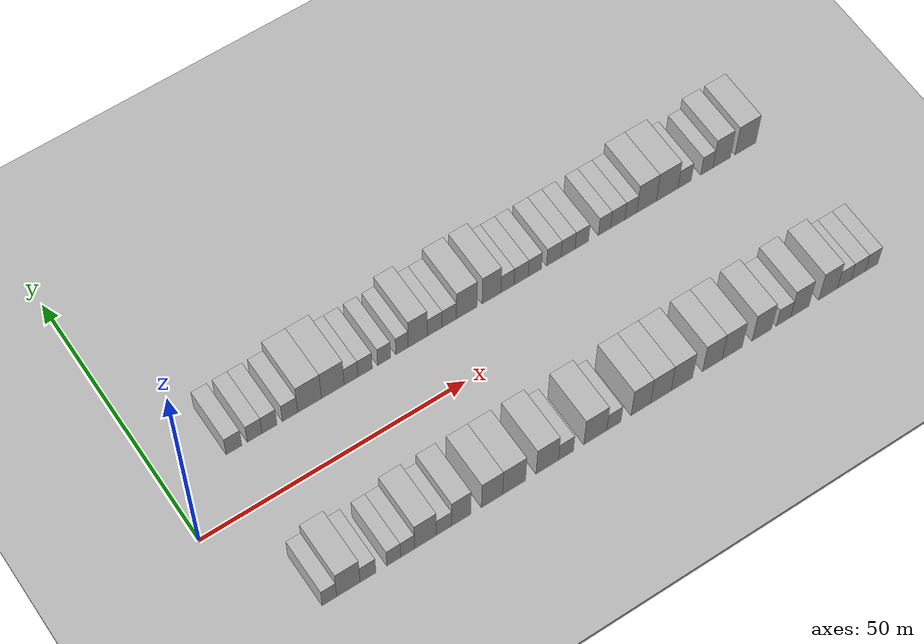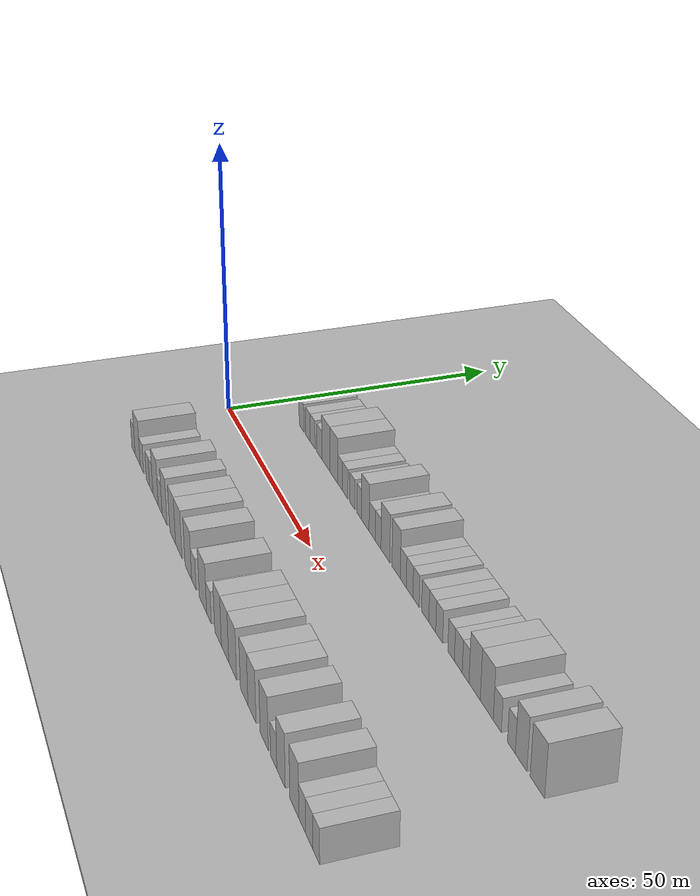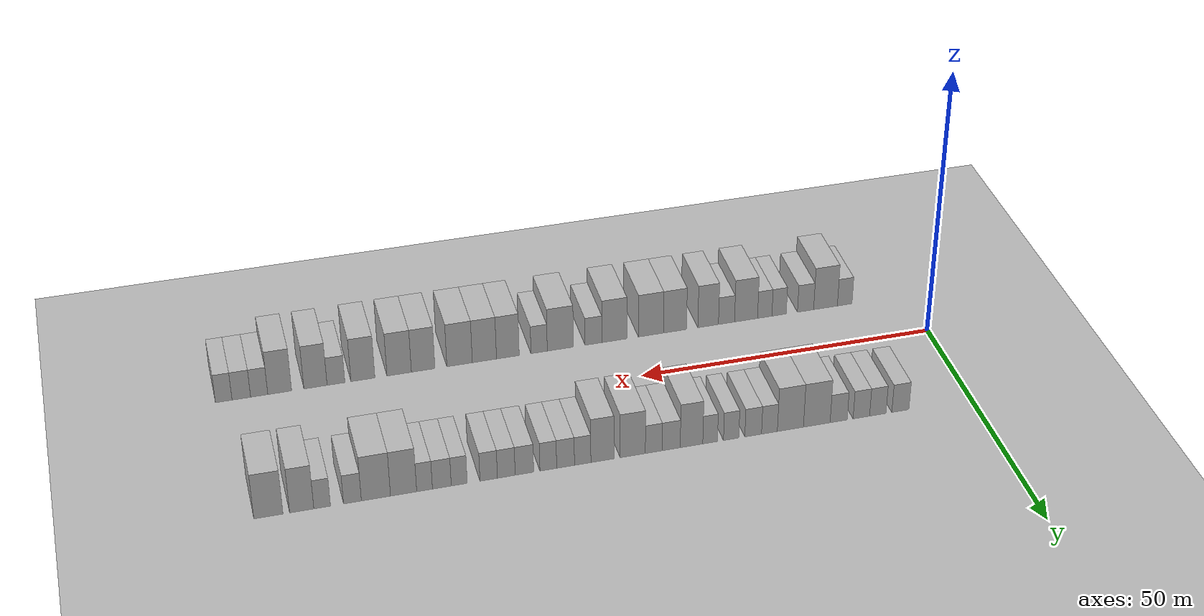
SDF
<sdf version="1.6">
 <world name="default">
  <include><name>ground_plane_1</name><uri>model://HANNAS_ground_plane</uri></include>
  <include>
   <name>ground_plane_2</name>
   <uri>model://HANNAS_ground_plane</uri>
   <pose>100 0 0  0 0 0</pose>
  </include>
  <model name="building_1">
   <static>1</static>
   <pose>12.4577 15.0000 0 0.000000 0.000000 1.570796</pose>
   <link name="link">
    <pose>0 0 3.00 0 0 0</pose>
    <collision name="collision"><geometry><box><size>10.0000 2.9153 6.0000</size></box></geometry></collision>
    <visual name="visual">
     <cast_shadows>0</cast_shadows>
     <geometry><box><size>10.0000 2.9153 6.0000</size></box></geometry>
     <material>
      <script>
       <uri>model://HANNAS_wall/materials/scripts</uri>
       <uri>model://HANNAS_wall/materials/textures</uri>
       <name>vrc/HANNAS_wall</name>
      </script>
     </material>
    </visual>
   </link>
  </model>
  <model name="building_2">
   <static>1</static>
   <pose>16.3046 15.0000 0 0.000000 0.000000 1.570796</pose>
   <link name="link">
    <pose>0 0 3.00 0 0 0</pose>
    <collision name="collision"><geometry><box><size>10.0000 2.7787 6.0000</size></box></geometry></collision>
    <visual name="visual">
     <cast_shadows>0</cast_shadows>
     <geometry><box><size>10.0000 2.7787 6.0000</size></box></geometry>
     <material>
      <script>
       <uri>model://HANNAS_wall/materials/scripts</uri>
       <uri>model://HANNAS_wall/materials/textures</uri>
       <name>vrc/HANNAS_wall</name>
      </script>
     </material>
    </visual>
   </link>
  </model>
  <model name="building_3">
   <static>1</static>
   <pose>19.0882 15.0000 0 0.000000 0.000000 1.570796</pose>
   <link name="link">
    <pose>0 0 3.00 0 0 0</pose>
    <collision name="collision"><geometry><box><size>10.0000 2.7884 6.0000</size></box></geometry></collision>
    <visual name="visual">
     <cast_shadows>0</cast_shadows>
     <geometry><box><size>10.0000 2.7884 6.0000</size></box></geometry>
     <material>
      <script>
       <uri>model://HANNAS_wall/materials/scripts</uri>
       <uri>model://HANNAS_wall/materials/textures</uri>
       <name>vrc/HANNAS_wall</name>
      </script>
     </material>
    </visual>
   </link>
  </model>
  <model name="building_4">
   <static>1</static>
   <pose>22.9180 15.0000 0 0.000000 0.000000 1.570796</pose>
   <link name="link">
    <pose>0 0 3.00 0 0 0</pose>
    <collision name="collision"><geometry><box><size>10.0000 2.8712 6.0000</size></box></geometry></collision>
    <visual name="visual">
     <cast_shadows>0</cast_shadows>
     <geometry><box><size>10.0000 2.8712 6.0000</size></box></geometry>
     <material>
      <script>
       <uri>model://HANNAS_wall/materials/scripts</uri>
       <uri>model://HANNAS_wall/materials/textures</uri>
       <name>vrc/HANNAS_wall</name>
      </script>
     </material>
    </visual>
   </link>
  </model>
  <model name="building_5">
   <static>1</static>
   <pose>26.5906 15.0000 0 0.000000 0.000000 1.570796</pose>
   <link name="link">
    <pose>0 0 4.50 0 0 0</pose>
    <collision name="collision"><geometry><box><size>10.0000 4.4740 9.0000</size></box></geometry></collision>
    <visual name="visual">
     <cast_shadows>0</cast_shadows>
     <geometry><box><size>10.0000 4.4740 9.0000</size></box></geometry>
     <material>
      <script>
       <uri>model://HANNAS_wall/materials/scripts</uri>
       <uri>model://HANNAS_wall/materials/textures</uri>
       <name>vrc/HANNAS_wall</name>
      </script>
     </material>
    </visual>
   </link>
  </model>
  <model name="building_6">
   <static>1</static>
   <pose>31.0061 15.0000 0 0.000000 0.000000 1.570796</pose>
   <link name="link">
    <pose>0 0 4.50 0 0 0</pose>
    <collision name="collision"><geometry><box><size>10.0000 4.3570 9.0000</size></box></geometry></collision>
    <visual name="visual">
     <cast_shadows>0</cast_shadows>
     <geometry><box><size>10.0000 4.3570 9.0000</size></box></geometry>
     <material>
      <script>
       <uri>model://HANNAS_wall/materials/scripts</uri>
       <uri>model://HANNAS_wall/materials/textures</uri>
       <name>vrc/HANNAS_wall</name>
      </script>
     </material>
    </visual>
   </link>
  </model>
  <model name="building_7">
   <static>1</static>
   <pose>34.4990 15.0000 0 0.000000 0.000000 1.570796</pose>
   <link name="link">
    <pose>0 0 3.00 0 0 0</pose>
    <collision name="collision"><geometry><box><size>10.0000 2.6288 6.0000</size></box></geometry></collision>
    <visual name="visual">
     <cast_shadows>0</cast_shadows>
     <geometry><box><size>10.0000 2.6288 6.0000</size></box></geometry>
     <material>
      <script>
       <uri>model://HANNAS_wall/materials/scripts</uri>
       <uri>model://HANNAS_wall/materials/textures</uri>
       <name>vrc/HANNAS_wall</name>
      </script>
     </material>
    </visual>
   </link>
  </model>
  <model name="building_8">
   <static>1</static>
   <pose>37.1985 15.0000 0 0.000000 0.000000 1.570796</pose>
   <link name="link">
    <pose>0 0 3.00 0 0 0</pose>
    <collision name="collision"><geometry><box><size>10.0000 2.7701 6.0000</size></box></geometry></collision>
    <visual name="visual">
     <cast_shadows>0</cast_shadows>
     <geometry><box><size>10.0000 2.7701 6.0000</size></box></geometry>
     <material>
      <script>
       <uri>model://HANNAS_wall/materials/scripts</uri>
       <uri>model://HANNAS_wall/materials/textures</uri>
       <name>vrc/HANNAS_wall</name>
      </script>
     </material>
    </visual>
   </link>
  </model>
  <model name="building_9">
   <static>1</static>
   <pose>40.8424 15.0000 0 0.000000 0.000000 1.570796</pose>
   <link name="link">
    <pose>0 0 3.00 0 0 0</pose>
    <collision name="collision"><geometry><box><size>10.0000 2.5178 6.0000</size></box></geometry></collision>
    <visual name="visual">
     <cast_shadows>0</cast_shadows>
     <geometry><box><size>10.0000 2.5178 6.0000</size></box></geometry>
     <material>
      <script>
       <uri>model://HANNAS_wall/materials/scripts</uri>
       <uri>model://HANNAS_wall/materials/textures</uri>
       <name>vrc/HANNAS_wall</name>
      </script>
     </material>
    </visual>
   </link>
  </model>
  <model name="building_10">
   <static>1</static>
   <pose>44.3051 15.0000 0 0.000000 0.000000 1.570796</pose>
   <link name="link">
    <pose>0 0 3.00 0 0 0</pose>
    <collision name="collision"><geometry><box><size>10.0000 2.4076 6.0000</size></box></geometry></collision>
    <visual name="visual">
     <cast_shadows>0</cast_shadows>
     <geometry><box><size>10.0000 2.4076 6.0000</size></box></geometry>
     <material>
      <script>
       <uri>model://HANNAS_wall/materials/scripts</uri>
       <uri>model://HANNAS_wall/materials/textures</uri>
       <name>vrc/HANNAS_wall</name>
      </script>
     </material>
    </visual>
   </link>
  </model>
  <model name="building_11">
   <static>1</static>
   <pose>47.3543 15.0000 0 0.000000 0.000000 1.570796</pose>
   <link name="link">
    <pose>0 0 4.50 0 0 0</pose>
    <collision name="collision"><geometry><box><size>10.0000 3.6907 9.0000</size></box></geometry></collision>
    <visual name="visual">
     <cast_shadows>0</cast_shadows>
     <geometry><box><size>10.0000 3.6907 9.0000</size></box></geometry>
     <material>
      <script>
       <uri>model://HANNAS_wall/materials/scripts</uri>
       <uri>model://HANNAS_wall/materials/textures</uri>
       <name>vrc/HANNAS_wall</name>
      </script>
     </material>
    </visual>
   </link>
  </model>
  <model name="building_12">
   <static>1</static>
   <pose>50.6692 15.0000 0 0.000000 0.000000 1.570796</pose>
   <link name="link">
    <pose>0 0 3.00 0 0 0</pose>
    <collision name="collision"><geometry><box><size>10.0000 2.9390 6.0000</size></box></geometry></collision>
    <visual name="visual">
     <cast_shadows>0</cast_shadows>
     <geometry><box><size>10.0000 2.9390 6.0000</size></box></geometry>
     <material>
      <script>
       <uri>model://HANNAS_wall/materials/scripts</uri>
       <uri>model://HANNAS_wall/materials/textures</uri>
       <name>vrc/HANNAS_wall</name>
      </script>
     </material>
    </visual>
   </link>
  </model>
  <model name="building_13">
   <static>1</static>
   <pose>53.5088 15.0000 0 0.000000 0.000000 1.570796</pose>
   <link name="link">
    <pose>0 0 3.00 0 0 0</pose>
    <collision name="collision"><geometry><box><size>10.0000 2.7402 6.0000</size></box></geometry></collision>
    <visual name="visual">
     <cast_shadows>0</cast_shadows>
     <geometry><box><size>10.0000 2.7402 6.0000</size></box></geometry>
     <material>
      <script>
       <uri>model://HANNAS_wall/materials/scripts</uri>
       <uri>model://HANNAS_wall/materials/textures</uri>
       <name>vrc/HANNAS_wall</name>
      </script>
     </material>
    </visual>
   </link>
  </model>
  <model name="building_14">
   <static>1</static>
   <pose>56.9188 15.0000 0 0.000000 0.000000 1.570796</pose>
   <link name="link">
    <pose>0 0 4.50 0 0 0</pose>
    <collision name="collision"><geometry><box><size>10.0000 4.0799 9.0000</size></box></geometry></collision>
    <visual name="visual">
     <cast_shadows>0</cast_shadows>
     <geometry><box><size>10.0000 4.0799 9.0000</size></box></geometry>
     <material>
      <script>
       <uri>model://HANNAS_wall/materials/scripts</uri>
       <uri>model://HANNAS_wall/materials/textures</uri>
       <name>vrc/HANNAS_wall</name>
      </script>
     </material>
    </visual>
   </link>
  </model>
  <model name="building_15">
   <static>1</static>
   <pose>61.8096 15.0000 0 0.000000 0.000000 1.570796</pose>
   <link name="link">
    <pose>0 0 4.50 0 0 0</pose>
    <collision name="collision"><geometry><box><size>10.0000 3.7018 9.0000</size></box></geometry></collision>
    <visual name="visual">
     <cast_shadows>0</cast_shadows>
     <geometry><box><size>10.0000 3.7018 9.0000</size></box></geometry>
     <material>
      <script>
       <uri>model://HANNAS_wall/materials/scripts</uri>
       <uri>model://HANNAS_wall/materials/textures</uri>
       <name>vrc/HANNAS_wall</name>
      </script>
     </material>
    </visual>
   </link>
  </model>
  <model name="building_16">
   <static>1</static>
   <pose>64.9770 15.0000 0 0.000000 0.000000 1.570796</pose>
   <link name="link">
    <pose>0 0 3.00 0 0 0</pose>
    <collision name="collision"><geometry><box><size>10.0000 2.6329 6.0000</size></box></geometry></collision>
    <visual name="visual">
     <cast_shadows>0</cast_shadows>
     <geometry><box><size>10.0000 2.6329 6.0000</size></box></geometry>
     <material>
      <script>
       <uri>model://HANNAS_wall/materials/scripts</uri>
       <uri>model://HANNAS_wall/materials/textures</uri>
       <name>vrc/HANNAS_wall</name>
      </script>
     </material>
    </visual>
   </link>
  </model>
  <model name="building_17">
   <static>1</static>
   <pose>67.7190 15.0000 0 0.000000 0.000000 1.570796</pose>
   <link name="link">
    <pose>0 0 3.00 0 0 0</pose>
    <collision name="collision"><geometry><box><size>10.0000 2.8511 6.0000</size></box></geometry></collision>
    <visual name="visual">
     <cast_shadows>0</cast_shadows>
     <geometry><box><size>10.0000 2.8511 6.0000</size></box></geometry>
     <material>
      <script>
       <uri>model://HANNAS_wall/materials/scripts</uri>
       <uri>model://HANNAS_wall/materials/textures</uri>
       <name>vrc/HANNAS_wall</name>
      </script>
     </material>
    </visual>
   </link>
  </model>
  <model name="building_18">
   <static>1</static>
   <pose>70.4726 15.0000 0 0.000000 0.000000 1.570796</pose>
   <link name="link">
    <pose>0 0 3.00 0 0 0</pose>
    <collision name="collision"><geometry><box><size>10.0000 2.6562 6.0000</size></box></geometry></collision>
    <visual name="visual">
     <cast_shadows>0</cast_shadows>
     <geometry><box><size>10.0000 2.6562 6.0000</size></box></geometry>
     <material>
      <script>
       <uri>model://HANNAS_wall/materials/scripts</uri>
       <uri>model://HANNAS_wall/materials/textures</uri>
       <name>vrc/HANNAS_wall</name>
      </script>
     </material>
    </visual>
   </link>
  </model>
  <model name="building_19">
   <static>1</static>
   <pose>74.2659 15.0000 0 0.000000 0.000000 1.570796</pose>
   <link name="link">
    <pose>0 0 3.00 0 0 0</pose>
    <collision name="collision"><geometry><box><size>10.0000 2.9304 6.0000</size></box></geometry></collision>
    <visual name="visual">
     <cast_shadows>0</cast_shadows>
     <geometry><box><size>10.0000 2.9304 6.0000</size></box></geometry>
     <material>
      <script>
       <uri>model://HANNAS_wall/materials/scripts</uri>
       <uri>model://HANNAS_wall/materials/textures</uri>
       <name>vrc/HANNAS_wall</name>
      </script>
     </material>
    </visual>
   </link>
  </model>
  <model name="building_20">
   <static>1</static>
   <pose>77.1341 15.0000 0 0.000000 0.000000 1.570796</pose>
   <link name="link">
    <pose>0 0 3.00 0 0 0</pose>
    <collision name="collision"><geometry><box><size>10.0000 2.8060 6.0000</size></box></geometry></collision>
    <visual name="visual">
     <cast_shadows>0</cast_shadows>
     <geometry><box><size>10.0000 2.8060 6.0000</size></box></geometry>
     <material>
      <script>
       <uri>model://HANNAS_wall/materials/scripts</uri>
       <uri>model://HANNAS_wall/materials/textures</uri>
       <name>vrc/HANNAS_wall</name>
      </script>
     </material>
    </visual>
   </link>
  </model>
  <model name="building_21">
   <static>1</static>
   <pose>79.9107 15.0000 0 0.000000 0.000000 1.570796</pose>
   <link name="link">
    <pose>0 0 3.00 0 0 0</pose>
    <collision name="collision"><geometry><box><size>10.0000 2.7471 6.0000</size></box></geometry></collision>
    <visual name="visual">
     <cast_shadows>0</cast_shadows>
     <geometry><box><size>10.0000 2.7471 6.0000</size></box></geometry>
     <material>
      <script>
       <uri>model://HANNAS_wall/materials/scripts</uri>
       <uri>model://HANNAS_wall/materials/textures</uri>
       <name>vrc/HANNAS_wall</name>
      </script>
     </material>
    </visual>
   </link>
  </model>
  <model name="building_22">
   <static>1</static>
   <pose>84.5346 15.0000 0 0.000000 0.000000 1.570796</pose>
   <link name="link">
    <pose>0 0 3.00 0 0 0</pose>
    <collision name="collision"><geometry><box><size>10.0000 2.5008 6.0000</size></box></geometry></collision>
    <visual name="visual">
     <cast_shadows>0</cast_shadows>
     <geometry><box><size>10.0000 2.5008 6.0000</size></box></geometry>
     <material>
      <script>
       <uri>model://HANNAS_wall/materials/scripts</uri>
       <uri>model://HANNAS_wall/materials/textures</uri>
       <name>vrc/HANNAS_wall</name>
      </script>
     </material>
    </visual>
   </link>
  </model>
  <model name="building_23">
   <static>1</static>
   <pose>87.2518 15.0000 0 0.000000 0.000000 1.570796</pose>
   <link name="link">
    <pose>0 0 3.00 0 0 0</pose>
    <collision name="collision"><geometry><box><size>10.0000 2.9336 6.0000</size></box></geometry></collision>
    <visual name="visual">
     <cast_shadows>0</cast_shadows>
     <geometry><box><size>10.0000 2.9336 6.0000</size></box></geometry>
     <material>
      <script>
       <uri>model://HANNAS_wall/materials/scripts</uri>
       <uri>model://HANNAS_wall/materials/textures</uri>
       <name>vrc/HANNAS_wall</name>
      </script>
     </material>
    </visual>
   </link>
  </model>
  <model name="building_24">
   <static>1</static>
   <pose>89.9448 15.0000 0 0.000000 0.000000 1.570796</pose>
   <link name="link">
    <pose>0 0 3.00 0 0 0</pose>
    <collision name="collision"><geometry><box><size>10.0000 2.4523 6.0000</size></box></geometry></collision>
    <visual name="visual">
     <cast_shadows>0</cast_shadows>
     <geometry><box><size>10.0000 2.4523 6.0000</size></box></geometry>
     <material>
      <script>
       <uri>model://HANNAS_wall/materials/scripts</uri>
       <uri>model://HANNAS_wall/materials/textures</uri>
       <name>vrc/HANNAS_wall</name>
      </script>
     </material>
    </visual>
   </link>
  </model>
  <model name="building_25">
   <static>1</static>
   <pose>93.1977 15.0000 0 0.000000 0.000000 1.570796</pose>
   <link name="link">
    <pose>0 0 4.50 0 0 0</pose>
    <collision name="collision"><geometry><box><size>10.0000 4.0536 9.0000</size></box></geometry></collision>
    <visual name="visual">
     <cast_shadows>0</cast_shadows>
     <geometry><box><size>10.0000 4.0536 9.0000</size></box></geometry>
     <material>
      <script>
       <uri>model://HANNAS_wall/materials/scripts</uri>
       <uri>model://HANNAS_wall/materials/textures</uri>
       <name>vrc/HANNAS_wall</name>
      </script>
     </material>
    </visual>
   </link>
  </model>
  <model name="building_26">
   <static>1</static>
   <pose>97.4699 15.0000 0 0.000000 0.000000 1.570796</pose>
   <link name="link">
    <pose>0 0 4.50 0 0 0</pose>
    <collision name="collision"><geometry><box><size>10.0000 4.4908 9.0000</size></box></geometry></collision>
    <visual name="visual">
     <cast_shadows>0</cast_shadows>
     <geometry><box><size>10.0000 4.4908 9.0000</size></box></geometry>
     <material>
      <script>
       <uri>model://HANNAS_wall/materials/scripts</uri>
       <uri>model://HANNAS_wall/materials/textures</uri>
       <name>vrc/HANNAS_wall</name>
      </script>
     </material>
    </visual>
   </link>
  </model>
  <model name="building_27">
   <static>1</static>
   <pose>101.0842 15.0000 0 0.000000 0.000000 1.570796</pose>
   <link name="link">
    <pose>0 0 3.00 0 0 0</pose>
    <collision name="collision"><geometry><box><size>10.0000 2.7377 6.0000</size></box></geometry></collision>
    <visual name="visual">
     <cast_shadows>0</cast_shadows>
     <geometry><box><size>10.0000 2.7377 6.0000</size></box></geometry>
     <material>
      <script>
       <uri>model://HANNAS_wall/materials/scripts</uri>
       <uri>model://HANNAS_wall/materials/textures</uri>
       <name>vrc/HANNAS_wall</name>
      </script>
     </material>
    </visual>
   </link>
  </model>
  <model name="building_28">
   <static>1</static>
   <pose>105.7235 15.0000 0 0.000000 0.000000 1.570796</pose>
   <link name="link">
    <pose>0 0 3.00 0 0 0</pose>
    <collision name="collision"><geometry><box><size>10.0000 2.5409 6.0000</size></box></geometry></collision>
    <visual name="visual">
     <cast_shadows>0</cast_shadows>
     <geometry><box><size>10.0000 2.5409 6.0000</size></box></geometry>
     <material>
      <script>
       <uri>model://HANNAS_wall/materials/scripts</uri>
       <uri>model://HANNAS_wall/materials/textures</uri>
       <name>vrc/HANNAS_wall</name>
      </script>
     </material>
    </visual>
   </link>
  </model>
  <model name="building_29">
   <static>1</static>
   <pose>108.8355 15.0000 0 0.000000 0.000000 1.570796</pose>
   <link name="link">
    <pose>0 0 4.50 0 0 0</pose>
    <collision name="collision"><geometry><box><size>10.0000 3.6832 9.0000</size></box></geometry></collision>
    <visual name="visual">
     <cast_shadows>0</cast_shadows>
     <geometry><box><size>10.0000 3.6832 9.0000</size></box></geometry>
     <material>
      <script>
       <uri>model://HANNAS_wall/materials/scripts</uri>
       <uri>model://HANNAS_wall/materials/textures</uri>
       <name>vrc/HANNAS_wall</name>
      </script>
     </material>
    </visual>
   </link>
  </model>
  <model name="building_30">
   <static>1</static>
   <pose>113.8813 15.0000 0 0.000000 0.000000 1.570796</pose>
   <link name="link">
    <pose>0 0 4.50 0 0 0</pose>
    <collision name="collision"><geometry><box><size>10.0000 4.4084 9.0000</size></box></geometry></collision>
    <visual name="visual">
     <cast_shadows>0</cast_shadows>
     <geometry><box><size>10.0000 4.4084 9.0000</size></box></geometry>
     <material>
      <script>
       <uri>model://HANNAS_wall/materials/scripts</uri>
       <uri>model://HANNAS_wall/materials/textures</uri>
       <name>vrc/HANNAS_wall</name>
      </script>
     </material>
    </visual>
   </link>
  </model>
  <model name="building_61">
   <static>1</static>
   <pose>11.3222 -15.0000 0 0.000000 0.000000 1.570796</pose>
   <link name="link">
    <pose>0 0 3.00 0 0 0</pose>
    <collision name="collision"><geometry><box><size>10.0000 2.6444 6.0000</size></box></geometry></collision>
    <visual name="visual">
     <cast_shadows>0</cast_shadows>
     <geometry><box><size>10.0000 2.6444 6.0000</size></box></geometry>
     <material>
      <script>
       <uri>model://HANNAS_wall/materials/scripts</uri>
       <uri>model://HANNAS_wall/materials/textures</uri>
       <name>vrc/HANNAS_wall</name>
      </script>
     </material>
    </visual>
   </link>
  </model>
  <model name="building_62">
   <static>1</static>
   <pose>14.7861 -15.0000 0 0.000000 0.000000 1.570796</pose>
   <link name="link">
    <pose>0 0 4.50 0 0 0</pose>
    <collision name="collision"><geometry><box><size>10.0000 4.2834 9.0000</size></box></geometry></collision>
    <visual name="visual">
     <cast_shadows>0</cast_shadows>
     <geometry><box><size>10.0000 4.2834 9.0000</size></box></geometry>
     <material>
      <script>
       <uri>model://HANNAS_wall/materials/scripts</uri>
       <uri>model://HANNAS_wall/materials/textures</uri>
       <name>vrc/HANNAS_wall</name>
      </script>
     </material>
    </visual>
   </link>
  </model>
  <model name="building_63">
   <static>1</static>
   <pose>18.3802 -15.0000 0 0.000000 0.000000 1.570796</pose>
   <link name="link">
    <pose>0 0 3.00 0 0 0</pose>
    <collision name="collision"><geometry><box><size>10.0000 2.9049 6.0000</size></box></geometry></collision>
    <visual name="visual">
     <cast_shadows>0</cast_shadows>
     <geometry><box><size>10.0000 2.9049 6.0000</size></box></geometry>
     <material>
      <script>
       <uri>model://HANNAS_wall/materials/scripts</uri>
       <uri>model://HANNAS_wall/materials/textures</uri>
       <name>vrc/HANNAS_wall</name>
      </script>
     </material>
    </visual>
   </link>
  </model>
  <model name="building_64">
   <static>1</static>
   <pose>23.1178 -15.0000 0 0.000000 0.000000 1.570796</pose>
   <link name="link">
    <pose>0 0 3.00 0 0 0</pose>
    <collision name="collision"><geometry><box><size>10.0000 2.5702 6.0000</size></box></geometry></collision>
    <visual name="visual">
     <cast_shadows>0</cast_shadows>
     <geometry><box><size>10.0000 2.5702 6.0000</size></box></geometry>
     <material>
      <script>
       <uri>model://HANNAS_wall/materials/scripts</uri>
       <uri>model://HANNAS_wall/materials/textures</uri>
       <name>vrc/HANNAS_wall</name>
      </script>
     </material>
    </visual>
   </link>
  </model>
  <model name="building_65">
   <static>1</static>
   <pose>25.6850 -15.0000 0 0.000000 0.000000 1.570796</pose>
   <link name="link">
    <pose>0 0 3.00 0 0 0</pose>
    <collision name="collision"><geometry><box><size>10.0000 2.5643 6.0000</size></box></geometry></collision>
    <visual name="visual">
     <cast_shadows>0</cast_shadows>
     <geometry><box><size>10.0000 2.5643 6.0000</size></box></geometry>
     <material>
      <script>
       <uri>model://HANNAS_wall/materials/scripts</uri>
       <uri>model://HANNAS_wall/materials/textures</uri>
       <name>vrc/HANNAS_wall</name>
      </script>
     </material>
    </visual>
   </link>
  </model>
  <model name="building_66">
   <static>1</static>
   <pose>29.0117 -15.0000 0 0.000000 0.000000 1.570796</pose>
   <link name="link">
    <pose>0 0 4.50 0 0 0</pose>
    <collision name="collision"><geometry><box><size>10.0000 4.0891 9.0000</size></box></geometry></collision>
    <visual name="visual">
     <cast_shadows>0</cast_shadows>
     <geometry><box><size>10.0000 4.0891 9.0000</size></box></geometry>
     <material>
      <script>
       <uri>model://HANNAS_wall/materials/scripts</uri>
       <uri>model://HANNAS_wall/materials/textures</uri>
       <name>vrc/HANNAS_wall</name>
      </script>
     </material>
    </visual>
   </link>
  </model>
  <model name="building_67">
   <static>1</static>
   <pose>32.4728 -15.0000 0 0.000000 0.000000 1.570796</pose>
   <link name="link">
    <pose>0 0 3.00 0 0 0</pose>
    <collision name="collision"><geometry><box><size>10.0000 2.8331 6.0000</size></box></geometry></collision>
    <visual name="visual">
     <cast_shadows>0</cast_shadows>
     <geometry><box><size>10.0000 2.8331 6.0000</size></box></geometry>
     <material>
      <script>
       <uri>model://HANNAS_wall/materials/scripts</uri>
       <uri>model://HANNAS_wall/materials/textures</uri>
       <name>vrc/HANNAS_wall</name>
      </script>
     </material>
    </visual>
   </link>
  </model>
  <model name="building_68">
   <static>1</static>
   <pose>35.7061 -15.0000 0 0.000000 0.000000 1.570796</pose>
   <link name="link">
    <pose>0 0 4.50 0 0 0</pose>
    <collision name="collision"><geometry><box><size>10.0000 3.6334 9.0000</size></box></geometry></collision>
    <visual name="visual">
     <cast_shadows>0</cast_shadows>
     <geometry><box><size>10.0000 3.6334 9.0000</size></box></geometry>
     <material>
      <script>
       <uri>model://HANNAS_wall/materials/scripts</uri>
       <uri>model://HANNAS_wall/materials/textures</uri>
       <name>vrc/HANNAS_wall</name>
      </script>
     </material>
    </visual>
   </link>
  </model>
  <model name="building_69">
   <static>1</static>
   <pose>41.5302 -15.0000 0 0.000000 0.000000 1.570796</pose>
   <link name="link">
    <pose>0 0 4.50 0 0 0</pose>
    <collision name="collision"><geometry><box><size>10.0000 4.0148 9.0000</size></box></geometry></collision>
    <visual name="visual">
     <cast_shadows>0</cast_shadows>
     <geometry><box><size>10.0000 4.0148 9.0000</size></box></geometry>
     <material>
      <script>
       <uri>model://HANNAS_wall/materials/scripts</uri>
       <uri>model://HANNAS_wall/materials/textures</uri>
       <name>vrc/HANNAS_wall</name>
      </script>
     </material>
    </visual>
   </link>
  </model>
  <model name="building_70">
   <static>1</static>
   <pose>45.7287 -15.0000 0 0.000000 0.000000 1.570796</pose>
   <link name="link">
    <pose>0 0 4.50 0 0 0</pose>
    <collision name="collision"><geometry><box><size>10.0000 4.3823 9.0000</size></box></geometry></collision>
    <visual name="visual">
     <cast_shadows>0</cast_shadows>
     <geometry><box><size>10.0000 4.3823 9.0000</size></box></geometry>
     <material>
      <script>
       <uri>model://HANNAS_wall/materials/scripts</uri>
       <uri>model://HANNAS_wall/materials/textures</uri>
       <name>vrc/HANNAS_wall</name>
      </script>
     </material>
    </visual>
   </link>
  </model>
  <model name="building_71">
   <static>1</static>
   <pose>52.0782 -15.0000 0 0.000000 0.000000 1.570796</pose>
   <link name="link">
    <pose>0 0 4.50 0 0 0</pose>
    <collision name="collision"><geometry><box><size>10.0000 4.3167 9.0000</size></box></geometry></collision>
    <visual name="visual">
     <cast_shadows>0</cast_shadows>
     <geometry><box><size>10.0000 4.3167 9.0000</size></box></geometry>
     <material>
      <script>
       <uri>model://HANNAS_wall/materials/scripts</uri>
       <uri>model://HANNAS_wall/materials/textures</uri>
       <name>vrc/HANNAS_wall</name>
      </script>
     </material>
    </visual>
   </link>
  </model>
  <model name="building_72">
   <static>1</static>
   <pose>55.6879 -15.0000 0 0.000000 0.000000 1.570796</pose>
   <link name="link">
    <pose>0 0 3.00 0 0 0</pose>
    <collision name="collision"><geometry><box><size>10.0000 2.9027 6.0000</size></box></geometry></collision>
    <visual name="visual">
     <cast_shadows>0</cast_shadows>
     <geometry><box><size>10.0000 2.9027 6.0000</size></box></geometry>
     <material>
      <script>
       <uri>model://HANNAS_wall/materials/scripts</uri>
       <uri>model://HANNAS_wall/materials/textures</uri>
       <name>vrc/HANNAS_wall</name>
      </script>
     </material>
    </visual>
   </link>
  </model>
  <model name="building_73">
   <static>1</static>
   <pose>61.3761 -15.0000 0 0.000000 0.000000 1.570796</pose>
   <link name="link">
    <pose>0 0 4.50 0 0 0</pose>
    <collision name="collision"><geometry><box><size>10.0000 4.4735 9.0000</size></box></geometry></collision>
    <visual name="visual">
     <cast_shadows>0</cast_shadows>
     <geometry><box><size>10.0000 4.4735 9.0000</size></box></geometry>
     <material>
      <script>
       <uri>model://HANNAS_wall/materials/scripts</uri>
       <uri>model://HANNAS_wall/materials/textures</uri>
       <name>vrc/HANNAS_wall</name>
      </script>
     </material>
    </visual>
   </link>
  </model>
  <model name="building_74">
   <static>1</static>
   <pose>65.0046 -15.0000 0 0.000000 0.000000 1.570796</pose>
   <link name="link">
    <pose>0 0 3.00 0 0 0</pose>
    <collision name="collision"><geometry><box><size>10.0000 2.7834 6.0000</size></box></geometry></collision>
    <visual name="visual">
     <cast_shadows>0</cast_shadows>
     <geometry><box><size>10.0000 2.7834 6.0000</size></box></geometry>
     <material>
      <script>
       <uri>model://HANNAS_wall/materials/scripts</uri>
       <uri>model://HANNAS_wall/materials/textures</uri>
       <name>vrc/HANNAS_wall</name>
      </script>
     </material>
    </visual>
   </link>
  </model>
  <model name="building_75">
   <static>1</static>
   <pose>70.3221 -15.0000 0 0.000000 0.000000 1.570796</pose>
   <link name="link">
    <pose>0 0 4.50 0 0 0</pose>
    <collision name="collision"><geometry><box><size>10.0000 3.8517 9.0000</size></box></geometry></collision>
    <visual name="visual">
     <cast_shadows>0</cast_shadows>
     <geometry><box><size>10.0000 3.8517 9.0000</size></box></geometry>
     <material>
      <script>
       <uri>model://HANNAS_wall/materials/scripts</uri>
       <uri>model://HANNAS_wall/materials/textures</uri>
       <name>vrc/HANNAS_wall</name>
      </script>
     </material>
    </visual>
   </link>
  </model>
  <model name="building_76">
   <static>1</static>
   <pose>74.2866 -15.0000 0 0.000000 0.000000 1.570796</pose>
   <link name="link">
    <pose>0 0 4.50 0 0 0</pose>
    <collision name="collision"><geometry><box><size>10.0000 4.0773 9.0000</size></box></geometry></collision>
    <visual name="visual">
     <cast_shadows>0</cast_shadows>
     <geometry><box><size>10.0000 4.0773 9.0000</size></box></geometry>
     <material>
      <script>
       <uri>model://HANNAS_wall/materials/scripts</uri>
       <uri>model://HANNAS_wall/materials/textures</uri>
       <name>vrc/HANNAS_wall</name>
      </script>
     </material>
    </visual>
   </link>
  </model>
  <model name="building_77">
   <static>1</static>
   <pose>78.4624 -15.0000 0 0.000000 0.000000 1.570796</pose>
   <link name="link">
    <pose>0 0 4.50 0 0 0</pose>
    <collision name="collision"><geometry><box><size>10.0000 4.2743 9.0000</size></box></geometry></collision>
    <visual name="visual">
     <cast_shadows>0</cast_shadows>
     <geometry><box><size>10.0000 4.2743 9.0000</size></box></geometry>
     <material>
      <script>
       <uri>model://HANNAS_wall/materials/scripts</uri>
       <uri>model://HANNAS_wall/materials/textures</uri>
       <name>vrc/HANNAS_wall</name>
      </script>
     </material>
    </visual>
   </link>
  </model>
  <model name="building_78">
   <static>1</static>
   <pose>84.5637 -15.0000 0 0.000000 0.000000 1.570796</pose>
   <link name="link">
    <pose>0 0 4.50 0 0 0</pose>
    <collision name="collision"><geometry><box><size>10.0000 3.9282 9.0000</size></box></geometry></collision>
    <visual name="visual">
     <cast_shadows>0</cast_shadows>
     <geometry><box><size>10.0000 3.9282 9.0000</size></box></geometry>
     <material>
      <script>
       <uri>model://HANNAS_wall/materials/scripts</uri>
       <uri>model://HANNAS_wall/materials/textures</uri>
       <name>vrc/HANNAS_wall</name>
      </script>
     </material>
    </visual>
   </link>
  </model>
  <model name="building_79">
   <static>1</static>
   <pose>88.5553 -15.0000 0 0.000000 0.000000 1.570796</pose>
   <link name="link">
    <pose>0 0 4.50 0 0 0</pose>
    <collision name="collision"><geometry><box><size>10.0000 4.0551 9.0000</size></box></geometry></collision>
    <visual name="visual">
     <cast_shadows>0</cast_shadows>
     <geometry><box><size>10.0000 4.0551 9.0000</size></box></geometry>
     <material>
      <script>
       <uri>model://HANNAS_wall/materials/scripts</uri>
       <uri>model://HANNAS_wall/materials/textures</uri>
       <name>vrc/HANNAS_wall</name>
      </script>
     </material>
    </visual>
   </link>
  </model>
  <model name="building_80">
   <static>1</static>
   <pose>94.5588 -15.0000 0 0.000000 0.000000 1.570796</pose>
   <link name="link">
    <pose>0 0 4.50 0 0 0</pose>
    <collision name="collision"><geometry><box><size>10.0000 3.9518 9.0000</size></box></geometry></collision>
    <visual name="visual">
     <cast_shadows>0</cast_shadows>
     <geometry><box><size>10.0000 3.9518 9.0000</size></box></geometry>
     <material>
      <script>
       <uri>model://HANNAS_wall/materials/scripts</uri>
       <uri>model://HANNAS_wall/materials/textures</uri>
       <name>vrc/HANNAS_wall</name>
      </script>
     </material>
    </visual>
   </link>
  </model>
  <model name="building_81">
   <static>1</static>
   <pose>98.9947 -15.0000 0 0.000000 0.000000 1.570796</pose>
   <link name="link">
    <pose>0 0 3.00 0 0 0</pose>
    <collision name="collision"><geometry><box><size>10.0000 2.9199 6.0000</size></box></geometry></collision>
    <visual name="visual">
     <cast_shadows>0</cast_shadows>
     <geometry><box><size>10.0000 2.9199 6.0000</size></box></geometry>
     <material>
      <script>
       <uri>model://HANNAS_wall/materials/scripts</uri>
       <uri>model://HANNAS_wall/materials/textures</uri>
       <name>vrc/HANNAS_wall</name>
      </script>
     </material>
    </visual>
   </link>
  </model>
  <model name="building_82">
   <static>1</static>
   <pose>102.3497 -15.0000 0 0.000000 0.000000 1.570796</pose>
   <link name="link">
    <pose>0 0 4.50 0 0 0</pose>
    <collision name="collision"><geometry><box><size>10.0000 3.7901 9.0000</size></box></geometry></collision>
    <visual name="visual">
     <cast_shadows>0</cast_shadows>
     <geometry><box><size>10.0000 3.7901 9.0000</size></box></geometry>
     <material>
      <script>
       <uri>model://HANNAS_wall/materials/scripts</uri>
       <uri>model://HANNAS_wall/materials/textures</uri>
       <name>vrc/HANNAS_wall</name>
      </script>
     </material>
    </visual>
   </link>
  </model>
  <model name="building_83">
   <static>1</static>
   <pose>108.1817 -15.0000 0 0.000000 0.000000 1.570796</pose>
   <link name="link">
    <pose>0 0 4.50 0 0 0</pose>
    <collision name="collision"><geometry><box><size>10.0000 3.8739 9.0000</size></box></geometry></collision>
    <visual name="visual">
     <cast_shadows>0</cast_shadows>
     <geometry><box><size>10.0000 3.8739 9.0000</size></box></geometry>
     <material>
      <script>
       <uri>model://HANNAS_wall/materials/scripts</uri>
       <uri>model://HANNAS_wall/materials/textures</uri>
       <name>vrc/HANNAS_wall</name>
      </script>
     </material>
    </visual>
   </link>
  </model>
  <model name="building_84">
   <static>1</static>
   <pose>111.5092 -15.0000 0 0.000000 0.000000 1.570796</pose>
   <link name="link">
    <pose>0 0 3.00 0 0 0</pose>
    <collision name="collision"><geometry><box><size>10.0000 2.7813 6.0000</size></box></geometry></collision>
    <visual name="visual">
     <cast_shadows>0</cast_shadows>
     <geometry><box><size>10.0000 2.7813 6.0000</size></box></geometry>
     <material>
      <script>
       <uri>model://HANNAS_wall/materials/scripts</uri>
       <uri>model://HANNAS_wall/materials/textures</uri>
       <name>vrc/HANNAS_wall</name>
      </script>
     </material>
    </visual>
   </link>
  </model>
  <model name="building_85">
   <static>1</static>
   <pose>114.3971 -15.0000 0 0.000000 0.000000 1.570796</pose>
   <link name="link">
    <pose>0 0 3.00 0 0 0</pose>
    <collision name="collision"><geometry><box><size>10.0000 2.9945 6.0000</size></box></geometry></collision>
    <visual name="visual">
     <cast_shadows>0</cast_shadows>
     <geometry><box><size>10.0000 2.9945 6.0000</size></box></geometry>
     <material>
      <script>
       <uri>model://HANNAS_wall/materials/scripts</uri>
       <uri>model://HANNAS_wall/materials/textures</uri>
       <name>vrc/HANNAS_wall</name>
      </script>
     </material>
    </visual>
   </link>
  </model>
  <model name="building_86">
   <static>1</static>
   <pose>117.2305 -15.0000 0 0.000000 0.000000 1.570796</pose>
   <link name="link">
    <pose>0 0 3.00 0 0 0</pose>
    <collision name="collision"><geometry><box><size>10.0000 2.6723 6.0000</size></box></geometry></collision>
    <visual name="visual">
     <cast_shadows>0</cast_shadows>
     <geometry><box><size>10.0000 2.6723 6.0000</size></box></geometry>
     <material>
      <script>
       <uri>model://HANNAS_wall/materials/scripts</uri>
       <uri>model://HANNAS_wall/materials/textures</uri>
       <name>vrc/HANNAS_wall</name>
      </script>
     </material>
    </visual>
   </link>
  </model>
 </world>
</sdf>
